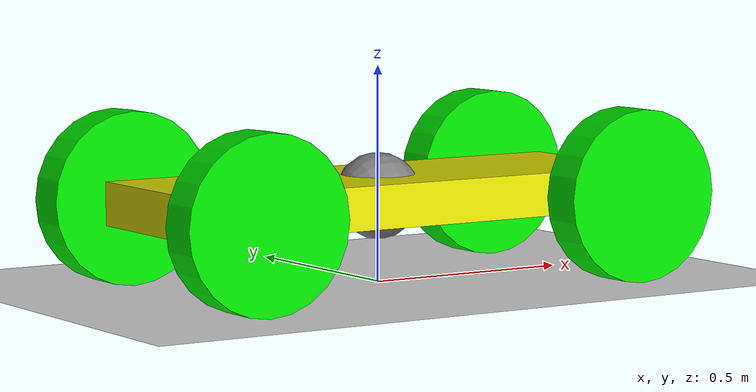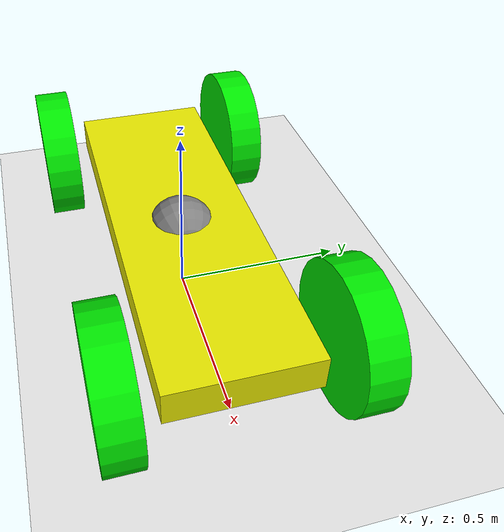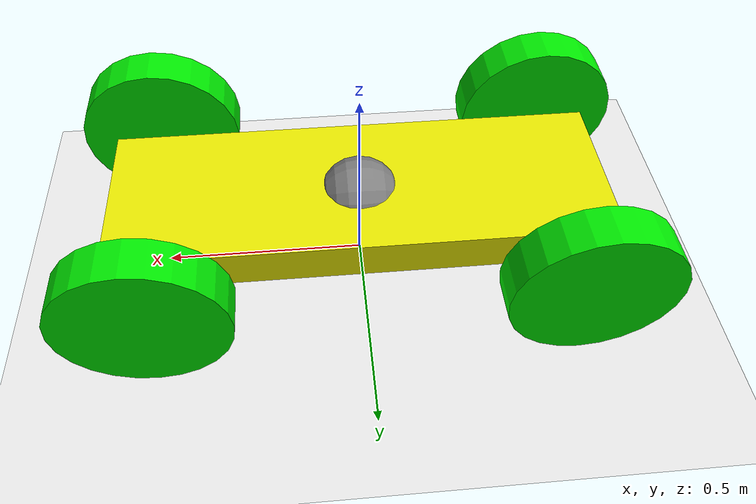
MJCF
<mujoco>
	<option gravity = "0 0 -9.81"/>
	<worldbody>
        <light diffuse=".5 .5 .5" pos="0 0 3" dir="0 0 -1"/>
		<geom type="plane" size="5 5 0.1" rgba=".9 .9 .9 1"/>
		<body name="chassis" pos="0 0 0.2" euler="0 90 0">
			<joint type="free"/>
			<geom type="box" size=".05 .2 .6" rgba=".9 .9 0 1"/>
			<site name="marker" pos="0 0 0" size="0.1"/>
			<body pos="0 .3 -.5" euler="90 0 0">
				<joint name="back_left_wheel" type="hinge" axis="0 0 -1"/>
				<geom type="cylinder" size=".2 .05" rgba="0 .9 0 1"/>
			</body>
			<body pos="0 -.3 -.5" euler="90 0 0">
				<joint name="back_right_wheel" type="hinge" axis="0 0 -1"/>
				<geom type="cylinder" size=".2 .05" rgba="0 .9 0 1"/>
			</body>

			<body pos="0 .3 .5" euler="90 0 0">
				<joint name="front_left_wheel" type="hinge" axis="0 0 -1"/>
				<geom type="cylinder" size=".2 .05" rgba="0 .9 0 1"/>
			</body>
			<body pos="0 -.3 .5" euler="90 0 0">
				<joint name="front_right_wheel" type="hinge" axis="0 0 -1"/>
				<geom type="cylinder" size=".2 .05" rgba="0 .9 0 1"/>
			</body>
		</body>
	</worldbody>
	<sensor>
		<framepos objtype="site" objname="marker"/>
	</sensor>
	<actuator>
		<velocity name="front_left_velocity_servo" joint="front_left_wheel" kv="200"/>
		<velocity name="front_right_velocity_servo" joint="front_right_wheel" kv="200"/>
		<velocity name="back_left_velocity_servo" joint="back_left_wheel" kv="200"/>
		<velocity name="back_right_velocity_servo" joint="back_right_wheel" kv="200"/>
	</actuator>
</mujoco>
